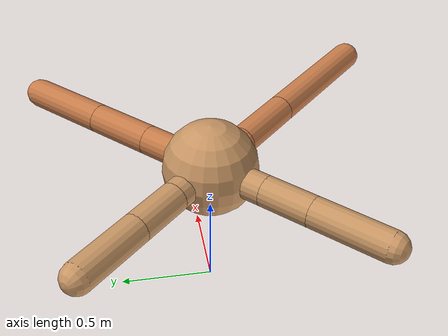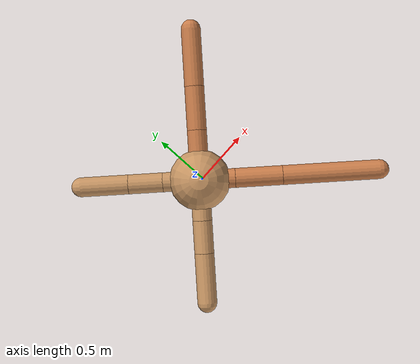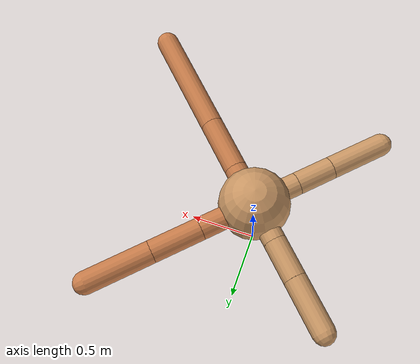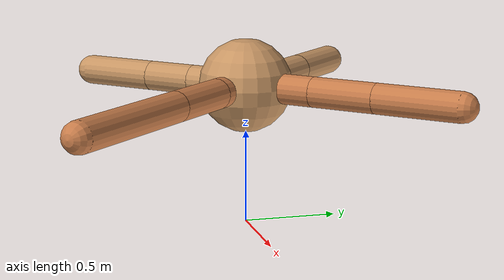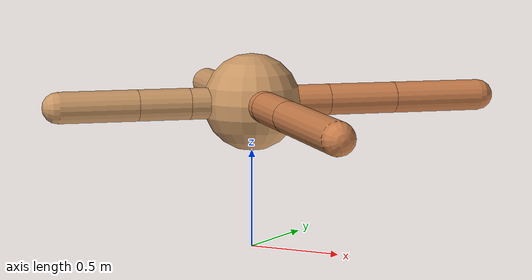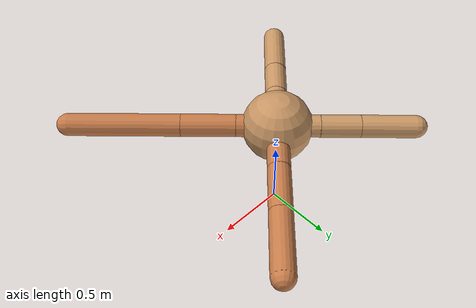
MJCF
<mujoco model="ant">
  <compiler angle="degree" coordinate="local" inertiafromgeom="true" />
  <option integrator="RK4" timestep="0.01" />
  <custom>
    <numeric data="0.0 0.0 0.55 1.0 0.0 0.0 0.0 0.0 1.0 0.0 -1.0 0.0 -1.0 0.0 1.0" name="init_qpos" />
  </custom>
  <default>
    <joint armature="1" damping="1" limited="true" />
    <geom conaffinity="0" condim="3" density="5.0" friction="1.5 0.1 0.1" margin="0.01" rgba="0.8 0.6 0.4 1" />
  </default>
  <worldbody>
    <body name="torso" pos="0 0 0.75">
      <geom name="torso_geom" pos="0 0 0" size="0.25" type="sphere" />

      <body name="front_left_leg" pos="0 0 0">
        <geom fromto="0.0 0.0 0.0 0.28781246825411694 0.28781246825411694 0.0" name="aux_1_geom" size="0.08" type="capsule" rgba=".8 .5 .3 1" />
        <body name="aux_1" pos="0.28781246825411694 0.28781246825411694 0.0">
          <joint axis="0 0 1" name="hip_1" pos="0.0 0.0 0.0" range="-40 40" type="hinge" />
          <geom fromto="0.0 0.0 0.0 0.25276316112859826 0.25276316112859826 0.0" name="left_leg_geom" size="0.08" type="capsule" rgba=".8 .5 .3 1" />
          <body pos="0.25276316112859826 0.25276316112859826 0.0" name="front_left_foot">
            <joint axis="-1 1 0" name="ankle_1" pos="0.0 0.0 0.0" range="30 100" type="hinge" />
            <geom fromto="0.0 0.0 0.0 0.3306713063388253 0.3306713063388253 0.0" name="left_ankle_geom" size="0.08" type="capsule" rgba=".8 .5 .3 1" />
          </body>
        </body>
      </body>
      <body name="front_right_leg" pos="0 0 0">
        <geom fromto="0.0 0.0 0.0 -0.21197242824990764 0.21197242824990764 0.0" name="aux_2_geom" size="0.08" type="capsule" />
        <body name="aux_2" pos="-0.21197242824990764 0.21197242824990764 0.0">
          <joint axis="0 0 1" name="hip_2" pos="0.0 0.0 0.0" range="-40 40" type="hinge" />
          <geom fromto="0.0 0.0 0.0 -0.198947551459697 0.198947551459697 0.0" name="right_leg_geom" size="0.08" type="capsule" />
          <body pos="-0.198947551459697 0.198947551459697 0.0" name="front_right_foot">
            <joint axis="1 1 0" name="ankle_2" pos="0.0 0.0 0.0" range="-100 -30" type="hinge" />
            <geom fromto="0.0 0.0 0.0 -0.2726323873475679 0.2726323873475679 0.0" name="right_ankle_geom" size="0.08" type="capsule" />
          </body>
        </body>
      </body>
      <body name="left_back_leg" pos="0 0 0">
        <geom fromto="0.0 0.0 0.0 -0.23279229083910585 -0.23279229083910585 0.0" name="aux_3_geom" size="0.08" type="capsule" />
        <body name="aux_3" pos="-0.23279229083910585 -0.23279229083910585 0.0">
          <joint axis="0 0 1" name="hip_3" pos="0.0 0.0 0.0" range="-40 40" type="hinge" />
          <geom fromto="0.0 0.0 0.0 -0.18909573507227184 -0.18909573507227184 0.0" name="back_leg_geom" size="0.08" type="capsule" />
          <body pos="-0.18909573507227184 -0.18909573507227184 0.0" name="left_back_foot">
            <joint axis="-1 1 0" name="ankle_3" pos="0.0 0.0 0.0" range="-100 -30" type="hinge" />
            <geom fromto="0.0 0.0 0.0 -0.2870031297793873 -0.2870031297793873 0.0" name="third_ankle_geom" size="0.08" type="capsule" />
          </body>
        </body>
      </body>
      <body name="right_back_leg" pos="0 0 0">
        <geom fromto="0.0 0.0 0.0 0.20469317721924468 -0.20469317721924468 0.0" name="aux_4_geom" size="0.08" type="capsule" rgba=".8 .5 .3 1" />
        <body name="aux_4" pos="0.20469317721924468 -0.20469317721924468 0.0">
          <joint axis="0 0 1" name="hip_4" pos="0.0 0.0 0.0" range="-40 40" type="hinge" />
          <geom fromto="0.0 0.0 0.0 0.27284865453790214 -0.27284865453790214 0.0" name="rightback_leg_geom" size="0.08" type="capsule" rgba=".8 .5 .3 1" />
          <body pos="0.27284865453790214 -0.27284865453790214 0.0" name="right_back_foot">
            <joint axis="1 1 0" name="ankle_4" pos="0.0 0.0 0.0" range="30 100" type="hinge" />
            <geom fromto="0.0 0.0 0.0 0.5583166363868477 -0.5583166363868477 0.0" name="fourth_ankle_geom" size="0.08" type="capsule" rgba=".8 .5 .3 1" />
          </body>
        </body>
      </body>
    </body>
  </worldbody>
  <actuator>
    <motor ctrllimited="true" ctrlrange="-1.0 1.0" joint="hip_4" gear="150" />
    <motor ctrllimited="true" ctrlrange="-1.0 1.0" joint="ankle_4" gear="150" />
    <motor ctrllimited="true" ctrlrange="-1.0 1.0" joint="hip_1" gear="150" />
    <motor ctrllimited="true" ctrlrange="-1.0 1.0" joint="ankle_1" gear="150" />
    <motor ctrllimited="true" ctrlrange="-1.0 1.0" joint="hip_2" gear="150" />
    <motor ctrllimited="true" ctrlrange="-1.0 1.0" joint="ankle_2" gear="150" />
    <motor ctrllimited="true" ctrlrange="-1.0 1.0" joint="hip_3" gear="150" />
    <motor ctrllimited="true" ctrlrange="-1.0 1.0" joint="ankle_3" gear="150" />
  </actuator>
</mujoco>
